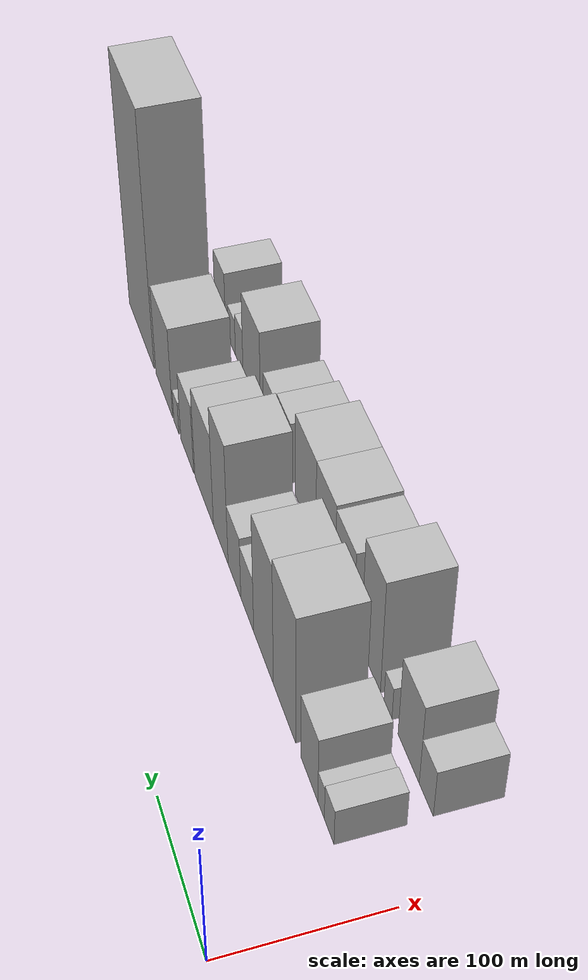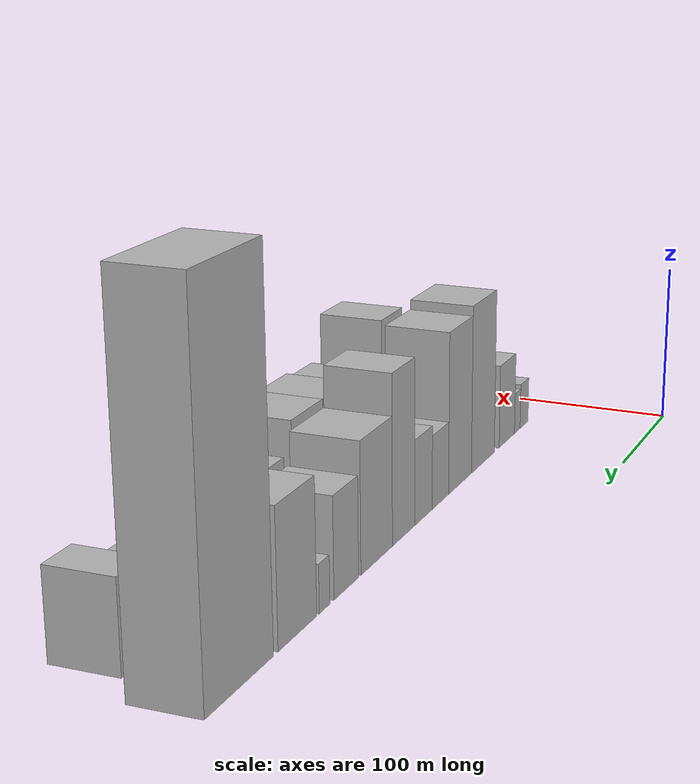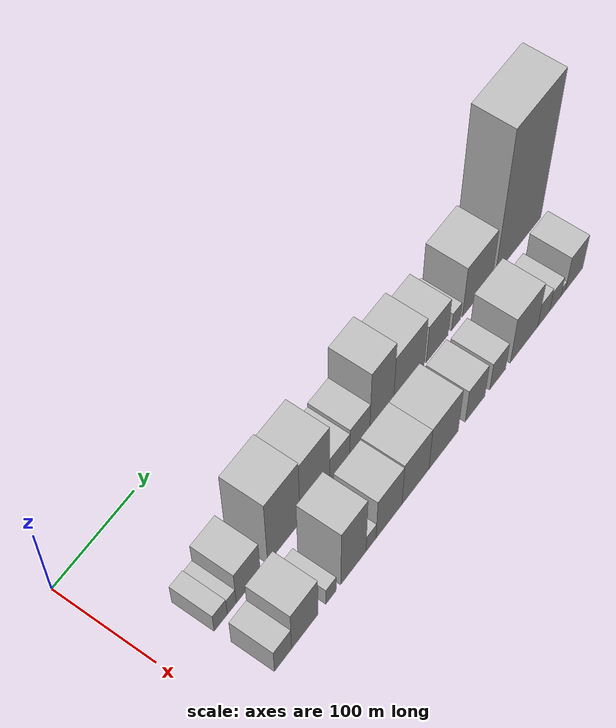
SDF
<sdf version="1.6">
 <world name="default">
  <model name="building_13">
   <static>1</static>
   <pose>100.0000 52.4092 0 0.000000 0.000000 0.000000</pose>
   <link name="link">
    <pose>0 0 15.00 0 0 0</pose>
    <collision name="collision"><geometry><box><size>40.0000 16.2426 30.0000</size></box></geometry></collision>
    <visual name="visual">
     <cast_shadows>0</cast_shadows>
     <geometry><box><size>40.0000 16.2426 30.0000</size></box></geometry>
     <material>
      <script>
       <uri>model://HANNAS_wall/materials/scripts</uri>
       <uri>model://HANNAS_wall/materials/textures</uri>
       <name>vrc/HANNAS_wall</name>
      </script>
     </material>
    </visual>
   </link>
  </model>
  <model name="building_14">
   <static>1</static>
   <pose>100.0000 66.1328 0 0.000000 0.000000 0.000000</pose>
   <link name="link">
    <pose>0 0 13.50 0 0 0</pose>
    <collision name="collision"><geometry><box><size>40.0000 11.2047 27.0000</size></box></geometry></collision>
    <visual name="visual">
     <cast_shadows>0</cast_shadows>
     <geometry><box><size>40.0000 11.2047 27.0000</size></box></geometry>
     <material>
      <script>
       <uri>model://HANNAS_wall/materials/scripts</uri>
       <uri>model://HANNAS_wall/materials/textures</uri>
       <name>vrc/HANNAS_wall</name>
      </script>
     </material>
    </visual>
   </link>
  </model>
  <model name="building_15">
   <static>1</static>
   <pose>100.0000 86.8536 0 0.000000 0.000000 0.000000</pose>
   <link name="link">
    <pose>0 0 27.00 0 0 0</pose>
    <collision name="collision"><geometry><box><size>40.0000 30.2367 54.0000</size></box></geometry></collision>
    <visual name="visual">
     <cast_shadows>0</cast_shadows>
     <geometry><box><size>40.0000 30.2367 54.0000</size></box></geometry>
     <material>
      <script>
       <uri>model://HANNAS_wall/materials/scripts</uri>
       <uri>model://HANNAS_wall/materials/textures</uri>
       <name>vrc/HANNAS_wall</name>
      </script>
     </material>
    </visual>
   </link>
  </model>
  <model name="building_16">
   <static>1</static>
   <pose>100.0000 131.8946 0 0.000000 0.000000 0.000000</pose>
   <link name="link">
    <pose>0 0 52.50 0 0 0</pose>
    <collision name="collision"><geometry><box><size>40.0000 41.8454 105.0000</size></box></geometry></collision>
    <visual name="visual">
     <cast_shadows>0</cast_shadows>
     <geometry><box><size>40.0000 41.8454 105.0000</size></box></geometry>
     <material>
      <script>
       <uri>model://HANNAS_wall/materials/scripts</uri>
       <uri>model://HANNAS_wall/materials/textures</uri>
       <name>vrc/HANNAS_wall</name>
      </script>
     </material>
    </visual>
   </link>
  </model>
  <model name="building_17">
   <static>1</static>
   <pose>100.0000 172.3350 0 0.000000 0.000000 0.000000</pose>
   <link name="link">
    <pose>0 0 49.50 0 0 0</pose>
    <collision name="collision"><geometry><box><size>40.0000 39.0354 99.0000</size></box></geometry></collision>
    <visual name="visual">
     <cast_shadows>0</cast_shadows>
     <geometry><box><size>40.0000 39.0354 99.0000</size></box></geometry>
     <material>
      <script>
       <uri>model://HANNAS_wall/materials/scripts</uri>
       <uri>model://HANNAS_wall/materials/textures</uri>
       <name>vrc/HANNAS_wall</name>
      </script>
     </material>
    </visual>
   </link>
  </model>
  <model name="building_18">
   <static>1</static>
   <pose>100.0000 205.1579 0 0.000000 0.000000 0.000000</pose>
   <link name="link">
    <pose>0 0 22.50 0 0 0</pose>
    <collision name="collision"><geometry><box><size>40.0000 26.6104 45.0000</size></box></geometry></collision>
    <visual name="visual">
     <cast_shadows>0</cast_shadows>
     <geometry><box><size>40.0000 26.6104 45.0000</size></box></geometry>
     <material>
      <script>
       <uri>model://HANNAS_wall/materials/scripts</uri>
       <uri>model://HANNAS_wall/materials/textures</uri>
       <name>vrc/HANNAS_wall</name>
      </script>
     </material>
    </visual>
   </link>
  </model>
  <model name="building_19">
   <static>1</static>
   <pose>100.0000 232.0301 0 0.000000 0.000000 0.000000</pose>
   <link name="link">
    <pose>0 0 25.50 0 0 0</pose>
    <collision name="collision"><geometry><box><size>40.0000 27.1341 51.0000</size></box></geometry></collision>
    <visual name="visual">
     <cast_shadows>0</cast_shadows>
     <geometry><box><size>40.0000 27.1341 51.0000</size></box></geometry>
     <material>
      <script>
       <uri>model://HANNAS_wall/materials/scripts</uri>
       <uri>model://HANNAS_wall/materials/textures</uri>
       <name>vrc/HANNAS_wall</name>
      </script>
     </material>
    </visual>
   </link>
  </model>
  <model name="building_20">
   <static>1</static>
   <pose>100.0000 261.9880 0 0.000000 0.000000 0.000000</pose>
   <link name="link">
    <pose>0 0 49.50 0 0 0</pose>
    <collision name="collision"><geometry><box><size>40.0000 32.7817 99.0000</size></box></geometry></collision>
    <visual name="visual">
     <cast_shadows>0</cast_shadows>
     <geometry><box><size>40.0000 32.7817 99.0000</size></box></geometry>
     <material>
      <script>
       <uri>model://HANNAS_wall/materials/scripts</uri>
       <uri>model://HANNAS_wall/materials/textures</uri>
       <name>vrc/HANNAS_wall</name>
      </script>
     </material>
    </visual>
   </link>
  </model>
  <model name="building_21">
   <static>1</static>
   <pose>100.0000 300.0381 0 0.000000 0.000000 0.000000</pose>
   <link name="link">
    <pose>0 0 37.50 0 0 0</pose>
    <collision name="collision"><geometry><box><size>40.0000 43.3186 75.0000</size></box></geometry></collision>
    <visual name="visual">
     <cast_shadows>0</cast_shadows>
     <geometry><box><size>40.0000 43.3186 75.0000</size></box></geometry>
     <material>
      <script>
       <uri>model://HANNAS_wall/materials/scripts</uri>
       <uri>model://HANNAS_wall/materials/textures</uri>
       <name>vrc/HANNAS_wall</name>
      </script>
     </material>
    </visual>
   </link>
  </model>
  <model name="building_22">
   <static>1</static>
   <pose>100.0000 340.4455 0 0.000000 0.000000 0.000000</pose>
   <link name="link">
    <pose>0 0 28.50 0 0 0</pose>
    <collision name="collision"><geometry><box><size>40.0000 31.4962 57.0000</size></box></geometry></collision>
    <visual name="visual">
     <cast_shadows>0</cast_shadows>
     <geometry><box><size>40.0000 31.4962 57.0000</size></box></geometry>
     <material>
      <script>
       <uri>model://HANNAS_wall/materials/scripts</uri>
       <uri>model://HANNAS_wall/materials/textures</uri>
       <name>vrc/HANNAS_wall</name>
      </script>
     </material>
    </visual>
   </link>
  </model>
  <model name="building_23">
   <static>1</static>
   <pose>100.0000 367.6402 0 0.000000 0.000000 0.000000</pose>
   <link name="link">
    <pose>0 0 13.50 0 0 0</pose>
    <collision name="collision"><geometry><box><size>40.0000 12.8931 27.0000</size></box></geometry></collision>
    <visual name="visual">
     <cast_shadows>0</cast_shadows>
     <geometry><box><size>40.0000 12.8931 27.0000</size></box></geometry>
     <material>
      <script>
       <uri>model://HANNAS_wall/materials/scripts</uri>
       <uri>model://HANNAS_wall/materials/textures</uri>
       <name>vrc/HANNAS_wall</name>
      </script>
     </material>
    </visual>
   </link>
  </model>
  <model name="building_24">
   <static>1</static>
   <pose>100.0000 399.1260 0 0.000000 0.000000 0.000000</pose>
   <link name="link">
    <pose>0 0 37.50 0 0 0</pose>
    <collision name="collision"><geometry><box><size>40.0000 44.0786 75.0000</size></box></geometry></collision>
    <visual name="visual">
     <cast_shadows>0</cast_shadows>
     <geometry><box><size>40.0000 44.0786 75.0000</size></box></geometry>
     <material>
      <script>
       <uri>model://HANNAS_wall/materials/scripts</uri>
       <uri>model://HANNAS_wall/materials/textures</uri>
       <name>vrc/HANNAS_wall</name>
      </script>
     </material>
    </visual>
   </link>
  </model>
  <model name="building_25">
   <static>1</static>
   <pose>100.0000 460.9439 0 0.000000 0.000000 0.000000</pose>
   <link name="link">
    <pose>0 0 102.00 0 0 0</pose>
    <collision name="collision"><geometry><box><size>40.0000 69.5573 204.0000</size></box></geometry></collision>
    <visual name="visual">
     <cast_shadows>0</cast_shadows>
     <geometry><box><size>40.0000 69.5573 204.0000</size></box></geometry>
     <material>
      <script>
       <uri>model://HANNAS_wall/materials/scripts</uri>
       <uri>model://HANNAS_wall/materials/textures</uri>
       <name>vrc/HANNAS_wall</name>
      </script>
     </material>
    </visual>
   </link>
  </model>
  <model name="building_40">
   <static>1</static>
   <pose>155.0000 55.9720 0 0.000000 0.000000 0.000000</pose>
   <link name="link">
    <pose>0 0 19.50 0 0 0</pose>
    <collision name="collision"><geometry><box><size>40.0000 21.4307 39.0000</size></box></geometry></collision>
    <visual name="visual">
     <cast_shadows>0</cast_shadows>
     <geometry><box><size>40.0000 21.4307 39.0000</size></box></geometry>
     <material>
      <script>
       <uri>model://HANNAS_wall/materials/scripts</uri>
       <uri>model://HANNAS_wall/materials/textures</uri>
       <name>vrc/HANNAS_wall</name>
      </script>
     </material>
    </visual>
   </link>
  </model>
  <model name="building_41">
   <static>1</static>
   <pose>155.0000 83.4148 0 0.000000 0.000000 0.000000</pose>
   <link name="link">
    <pose>0 0 33.00 0 0 0</pose>
    <collision name="collision"><geometry><box><size>40.0000 33.4549 66.0000</size></box></geometry></collision>
    <visual name="visual">
     <cast_shadows>0</cast_shadows>
     <geometry><box><size>40.0000 33.4549 66.0000</size></box></geometry>
     <material>
      <script>
       <uri>model://HANNAS_wall/materials/scripts</uri>
       <uri>model://HANNAS_wall/materials/textures</uri>
       <name>vrc/HANNAS_wall</name>
      </script>
     </material>
    </visual>
   </link>
  </model>
  <model name="building_42">
   <static>1</static>
   <pose>155.0000 116.7351 0 0.000000 0.000000 0.000000</pose>
   <link name="link">
    <pose>0 0 13.50 0 0 0</pose>
    <collision name="collision"><geometry><box><size>40.0000 13.1857 27.0000</size></box></geometry></collision>
    <visual name="visual">
     <cast_shadows>0</cast_shadows>
     <geometry><box><size>40.0000 13.1857 27.0000</size></box></geometry>
     <material>
      <script>
       <uri>model://HANNAS_wall/materials/scripts</uri>
       <uri>model://HANNAS_wall/materials/textures</uri>
       <name>vrc/HANNAS_wall</name>
      </script>
     </material>
    </visual>
   </link>
  </model>
  <model name="building_43">
   <static>1</static>
   <pose>155.0000 145.8277 0 0.000000 0.000000 0.000000</pose>
   <link name="link">
    <pose>0 0 46.50 0 0 0</pose>
    <collision name="collision"><geometry><box><size>40.0000 32.9994 93.0000</size></box></geometry></collision>
    <visual name="visual">
     <cast_shadows>0</cast_shadows>
     <geometry><box><size>40.0000 32.9994 93.0000</size></box></geometry>
     <material>
      <script>
       <uri>model://HANNAS_wall/materials/scripts</uri>
       <uri>model://HANNAS_wall/materials/textures</uri>
       <name>vrc/HANNAS_wall</name>
      </script>
     </material>
    </visual>
   </link>
  </model>
  <model name="building_44">
   <static>1</static>
   <pose>155.0000 169.0052 0 0.000000 0.000000 0.000000</pose>
   <link name="link">
    <pose>0 0 13.50 0 0 0</pose>
    <collision name="collision"><geometry><box><size>40.0000 13.3555 27.0000</size></box></geometry></collision>
    <visual name="visual">
     <cast_shadows>0</cast_shadows>
     <geometry><box><size>40.0000 13.3555 27.0000</size></box></geometry>
     <material>
      <script>
       <uri>model://HANNAS_wall/materials/scripts</uri>
       <uri>model://HANNAS_wall/materials/textures</uri>
       <name>vrc/HANNAS_wall</name>
      </script>
     </material>
    </visual>
   </link>
  </model>
  <model name="building_45">
   <static>1</static>
   <pose>155.0000 193.0488 0 0.000000 0.000000 0.000000</pose>
   <link name="link">
    <pose>0 0 33.00 0 0 0</pose>
    <collision name="collision"><geometry><box><size>40.0000 34.7317 66.0000</size></box></geometry></collision>
    <visual name="visual">
     <cast_shadows>0</cast_shadows>
     <geometry><box><size>40.0000 34.7317 66.0000</size></box></geometry>
     <material>
      <script>
       <uri>model://HANNAS_wall/materials/scripts</uri>
       <uri>model://HANNAS_wall/materials/textures</uri>
       <name>vrc/HANNAS_wall</name>
      </script>
     </material>
    </visual>
   </link>
  </model>
  <model name="building_46">
   <static>1</static>
   <pose>155.0000 228.9056 0 0.000000 0.000000 0.000000</pose>
   <link name="link">
    <pose>0 0 34.50 0 0 0</pose>
    <collision name="collision"><geometry><box><size>40.0000 36.9820 69.0000</size></box></geometry></collision>
    <visual name="visual">
     <cast_shadows>0</cast_shadows>
     <geometry><box><size>40.0000 36.9820 69.0000</size></box></geometry>
     <material>
      <script>
       <uri>model://HANNAS_wall/materials/scripts</uri>
       <uri>model://HANNAS_wall/materials/textures</uri>
       <name>vrc/HANNAS_wall</name>
      </script>
     </material>
    </visual>
   </link>
  </model>
  <model name="building_47">
   <static>1</static>
   <pose>155.0000 267.9491 0 0.000000 0.000000 0.000000</pose>
   <link name="link">
    <pose>0 0 34.50 0 0 0</pose>
    <collision name="collision"><geometry><box><size>40.0000 41.1049 69.0000</size></box></geometry></collision>
    <visual name="visual">
     <cast_shadows>0</cast_shadows>
     <geometry><box><size>40.0000 41.1049 69.0000</size></box></geometry>
     <material>
      <script>
       <uri>model://HANNAS_wall/materials/scripts</uri>
       <uri>model://HANNAS_wall/materials/textures</uri>
       <name>vrc/HANNAS_wall</name>
      </script>
     </material>
    </visual>
   </link>
  </model>
  <model name="building_48">
   <static>1</static>
   <pose>155.0000 312.6215 0 0.000000 0.000000 0.000000</pose>
   <link name="link">
    <pose>0 0 25.50 0 0 0</pose>
    <collision name="collision"><geometry><box><size>40.0000 28.2399 51.0000</size></box></geometry></collision>
    <visual name="visual">
     <cast_shadows>0</cast_shadows>
     <geometry><box><size>40.0000 28.2399 51.0000</size></box></geometry>
     <material>
      <script>
       <uri>model://HANNAS_wall/materials/scripts</uri>
       <uri>model://HANNAS_wall/materials/textures</uri>
       <name>vrc/HANNAS_wall</name>
      </script>
     </material>
    </visual>
   </link>
  </model>
  <model name="building_49">
   <static>1</static>
   <pose>155.0000 345.3048 0 0.000000 0.000000 0.000000</pose>
   <link name="link">
    <pose>0 0 21.00 0 0 0</pose>
    <collision name="collision"><geometry><box><size>40.0000 23.1267 42.0000</size></box></geometry></collision>
    <visual name="visual">
     <cast_shadows>0</cast_shadows>
     <geometry><box><size>40.0000 23.1267 42.0000</size></box></geometry>
     <material>
      <script>
       <uri>model://HANNAS_wall/materials/scripts</uri>
       <uri>model://HANNAS_wall/materials/textures</uri>
       <name>vrc/HANNAS_wall</name>
      </script>
     </material>
    </visual>
   </link>
  </model>
  <model name="building_50">
   <static>1</static>
   <pose>155.0000 384.2247 0 0.000000 0.000000 0.000000</pose>
   <link name="link">
    <pose>0 0 34.50 0 0 0</pose>
    <collision name="collision"><geometry><box><size>40.0000 40.7129 69.0000</size></box></geometry></collision>
    <visual name="visual">
     <cast_shadows>0</cast_shadows>
     <geometry><box><size>40.0000 40.7129 69.0000</size></box></geometry>
     <material>
      <script>
       <uri>model://HANNAS_wall/materials/scripts</uri>
       <uri>model://HANNAS_wall/materials/textures</uri>
       <name>vrc/HANNAS_wall</name>
      </script>
     </material>
    </visual>
   </link>
  </model>
  <model name="building_51">
   <static>1</static>
   <pose>155.0000 413.6783 0 0.000000 0.000000 0.000000</pose>
   <link name="link">
    <pose>0 0 18.00 0 0 0</pose>
    <collision name="collision"><geometry><box><size>40.0000 18.1944 36.0000</size></box></geometry></collision>
    <visual name="visual">
     <cast_shadows>0</cast_shadows>
     <geometry><box><size>40.0000 18.1944 36.0000</size></box></geometry>
     <material>
      <script>
       <uri>model://HANNAS_wall/materials/scripts</uri>
       <uri>model://HANNAS_wall/materials/textures</uri>
       <name>vrc/HANNAS_wall</name>
      </script>
     </material>
    </visual>
   </link>
  </model>
  <model name="building_52">
   <static>1</static>
   <pose>155.0000 431.5471 0 0.000000 0.000000 0.000000</pose>
   <link name="link">
    <pose>0 0 15.00 0 0 0</pose>
    <collision name="collision"><geometry><box><size>40.0000 17.5431 30.0000</size></box></geometry></collision>
    <visual name="visual">
     <cast_shadows>0</cast_shadows>
     <geometry><box><size>40.0000 17.5431 30.0000</size></box></geometry>
     <material>
      <script>
       <uri>model://HANNAS_wall/materials/scripts</uri>
       <uri>model://HANNAS_wall/materials/textures</uri>
       <name>vrc/HANNAS_wall</name>
      </script>
     </material>
    </visual>
   </link>
  </model>
  <model name="building_53">
   <static>1</static>
   <pose>155.0000 443.5030 0 0.000000 0.000000 0.000000</pose>
   <link name="link">
    <pose>0 0 7.50 0 0 0</pose>
    <collision name="collision"><geometry><box><size>40.0000 6.3687 15.0000</size></box></geometry></collision>
    <visual name="visual">
     <cast_shadows>0</cast_shadows>
     <geometry><box><size>40.0000 6.3687 15.0000</size></box></geometry>
     <material>
      <script>
       <uri>model://HANNAS_wall/materials/scripts</uri>
       <uri>model://HANNAS_wall/materials/textures</uri>
       <name>vrc/HANNAS_wall</name>
      </script>
     </material>
    </visual>
   </link>
  </model>
  <model name="building_54">
   <static>1</static>
   <pose>155.0000 460.1711 0 0.000000 0.000000 0.000000</pose>
   <link name="link">
    <pose>0 0 25.50 0 0 0</pose>
    <collision name="collision"><geometry><box><size>40.0000 26.9676 51.0000</size></box></geometry></collision>
    <visual name="visual">
     <cast_shadows>0</cast_shadows>
     <geometry><box><size>40.0000 26.9676 51.0000</size></box></geometry>
     <material>
      <script>
       <uri>model://HANNAS_wall/materials/scripts</uri>
       <uri>model://HANNAS_wall/materials/textures</uri>
       <name>vrc/HANNAS_wall</name>
      </script>
     </material>
    </visual>
   </link>
  </model>
 </world>
</sdf>
